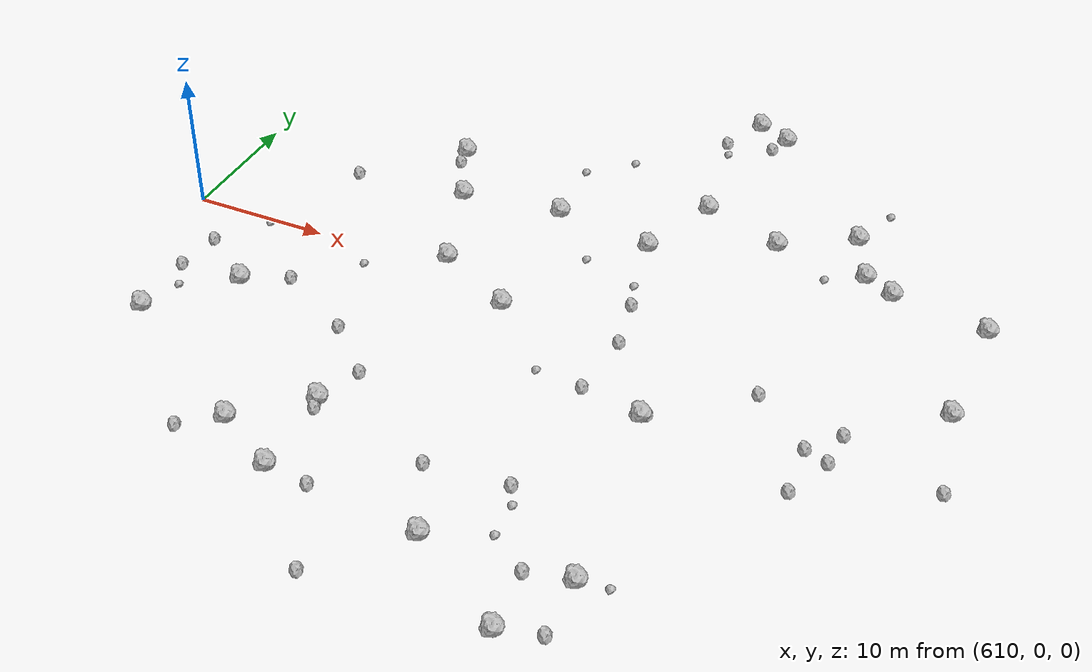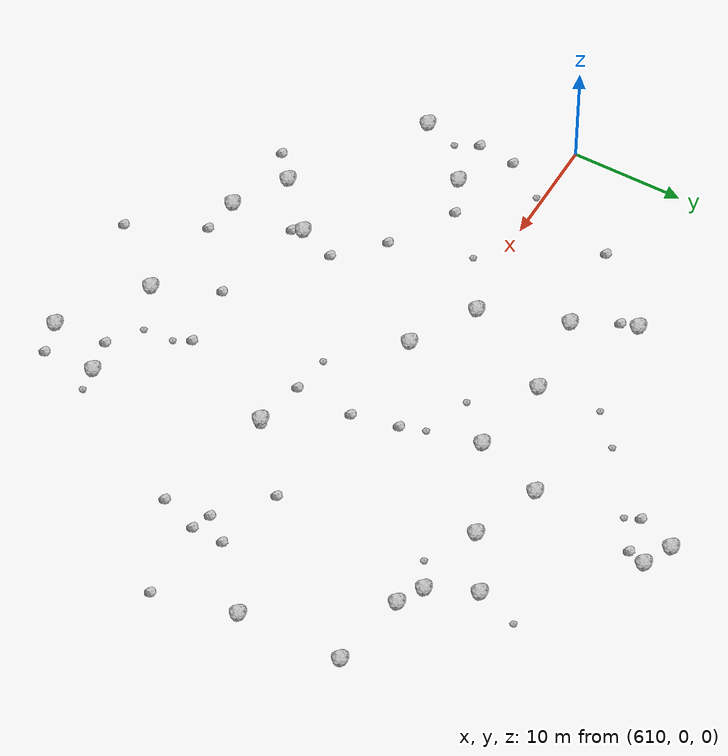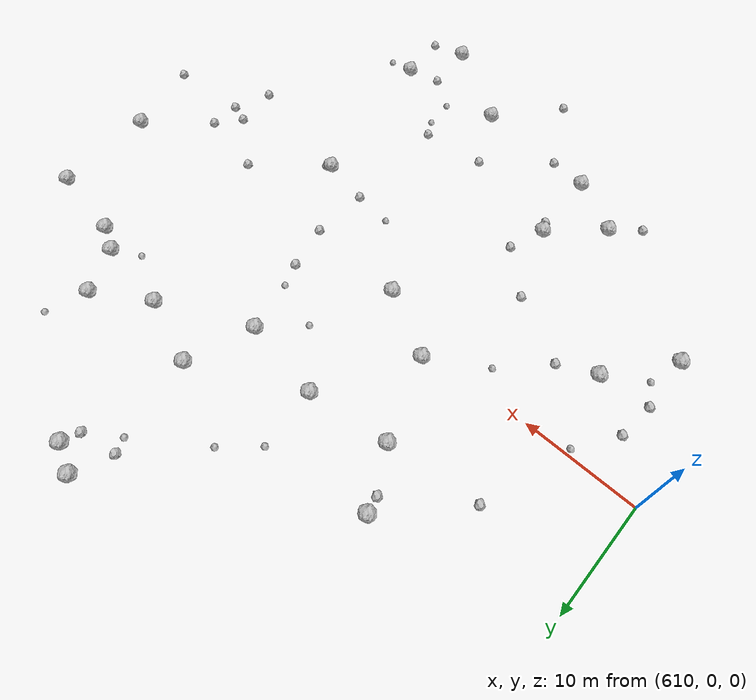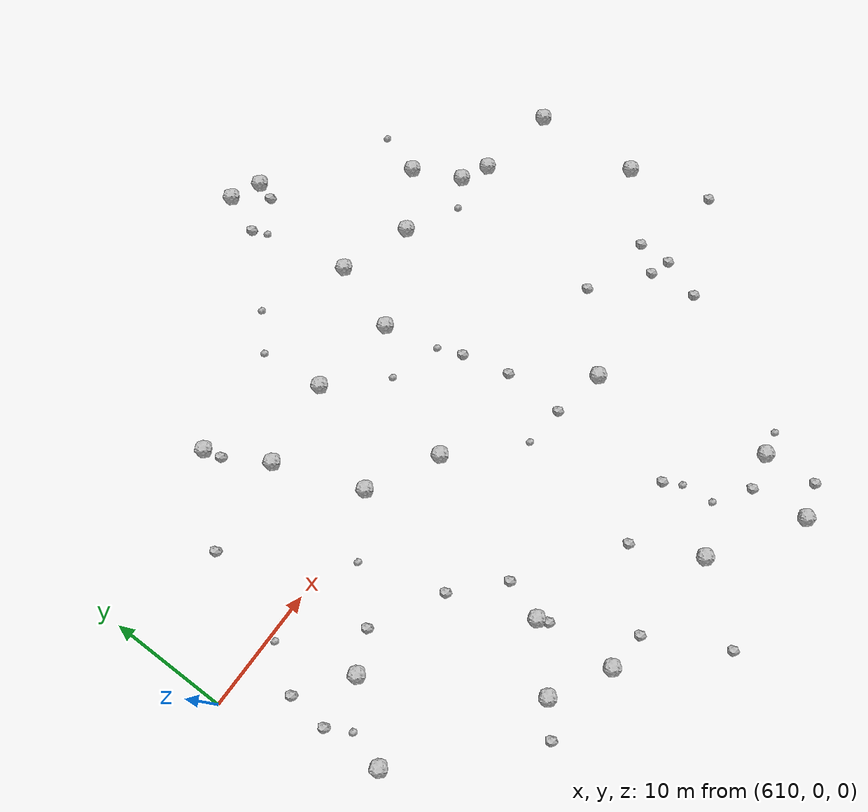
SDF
<sdf version="1.6">
 <world name="default">
  <include><uri>model://sun</uri></include>
  <model name="rock1_16_3">
   <include><uri>model://rock1</uri><pose>624.6951061247213 13.718830270747148 0.5 0 0 0</pose></include>
  </model>
  <model name="rock1_16_4">
   <include><uri>model://rock1</uri><pose>629.7476407820709 -22.551178552766835 0.5 0 0 0</pose></include>
  </model>
  <model name="rock1_16_5">
   <include><uri>model://rock1</uri><pose>650.1442416276761 12.368684869850952 0.5 0 0 0</pose></include>
  </model>
  <model name="rock1_16_6">
   <include><uri>model://rock1</uri><pose>648.4485884755566 -28.580011303647755 0.5 0 0 0</pose></include>
  </model>
  <model name="rock1_16_7">
   <include><uri>model://rock1</uri><pose>629.405649701284 -15.809857208687223 0.5 0 0 0</pose></include>
  </model>
  <model name="rock1_16_8">
   <include><uri>model://rock1</uri><pose>635.559800156534 -1.9968309473094017 0.5 0 0 0</pose></include>
  </model>
  <model name="rock1_16_9">
   <include><uri>model://rock1</uri><pose>629.7308527262928 1.1542935771434202 0.5 0 0 0</pose></include>
  </model>
  <model name="rock1_16_10">
   <include><uri>model://rock1</uri><pose>644.084568142683 14.481755276689462 0.5 0 0 0</pose></include>
  </model>
  <model name="rock1_16_11">
   <include><uri>model://rock1</uri><pose>643.6435707025435 26.593256433025033 0.5 0 0 0</pose></include>
  </model>
  <model name="rock1_16_12">
   <include><uri>model://rock1</uri><pose>641.0865334145966 -23.76369726354458 0.5 0 0 0</pose></include>
  </model>
  <model name="rock1_16_13">
   <include><uri>model://rock1</uri><pose>641.9102653263034 8.382591499464276 0.5 0 0 0</pose></include>
  </model>
  <model name="rock1_16_14">
   <include><uri>model://rock1</uri><pose>651.0698255677537 -23.256335119488604 0.5 0 0 0</pose></include>
  </model>
  <model name="rock1_16_15">
   <include><uri>model://rock1</uri><pose>613.5563316320186 -12.60975502994004 0.5 0 0 0</pose></include>
  </model>
  <model name="rock1_16_16">
   <include><uri>model://rock1</uri><pose>666.2423918418353 9.09763422158116 0.5 0 0 0</pose></include>
  </model>
  <model name="rock1_16_17">
   <include><uri>model://rock1</uri><pose>648.7075011325164 -8.565093412643364 0.5 0 0 0</pose></include>
  </model>
  <model name="rock1_16_18">
   <include><uri>model://rock1</uri><pose>617.9233006595375 -7.171319170004743 0.5 0 0 0</pose></include>
  </model>
  <model name="rock1_16_19">
   <include><uri>model://rock1</uri><pose>634.4971009699059 9.558275690767061 0.5 0 0 0</pose></include>
  </model>
  <model name="rock1_16_20">
   <include><uri>model://rock1</uri><pose>655.1542344380988 15.479477859653201 0.5 0 0 0</pose></include>
  </model>
  <model name="rock1_16_21">
   <include><uri>model://rock1</uri><pose>659.2587749243615 10.25777684119091 0.5 0 0 0</pose></include>
  </model>
  <model name="rock1_16_22">
   <include><uri>model://rock1</uri><pose>625.0552674548755 -19.844142554310437 0.5 0 0 0</pose></include>
  </model>
  <model name="rock1_16_23">
   <include><uri>model://rock1</uri><pose>666.4526756565729 -0.11632271990410104 0.5 0 0 0</pose></include>
  </model>
  <model name="rock1_16_24">
   <include><uri>model://rock1</uri><pose>646.1395426262486 25.44110477162151 0.5 0 0 0</pose></include>
  </model>
  <model name="rock1_16_25">
   <include><uri>model://rock1</uri><pose>657.0035825655029 11.42768645069269 0.5 0 0 0</pose></include>
  </model>
  <model name="rock1_16_26">
   <include><uri>model://rock1</uri><pose>627.1121932097811 8.585842584280435 0.5 0 0 0</pose></include>
  </model>
  <model name="rock2_16_0">
   <include><uri>model://rock2</uri><pose>645.5400127340915 23.862011153715045 0.3 0 0 0</pose></include>
  </model>
  <model name="rock2_16_1">
   <include><uri>model://rock2</uri><pose>644.4986333207172 -2.4318724437696275 0.3 0 0 0</pose></include>
  </model>
  <model name="rock2_16_2">
   <include><uri>model://rock2</uri><pose>622.6210322961388 -21.8376386345401 0.3 0 0 0</pose></include>
  </model>
  <model name="rock2_16_3">
   <include><uri>model://rock2</uri><pose>649.0063982299672 -8.28784612822911 0.3 0 0 0</pose></include>
  </model>
  <model name="rock2_16_4">
   <include><uri>model://rock2</uri><pose>621.122743320187 -5.652274748456609 0.3 0 0 0</pose></include>
  </model>
  <model name="rock2_16_5">
   <include><uri>model://rock2</uri><pose>647.9900614479455 -23.904176067503016 0.3 0 0 0</pose></include>
  </model>
  <model name="rock2_16_6">
   <include><uri>model://rock2</uri><pose>668.0025278486545 -7.253707055857991 0.3 0 0 0</pose></include>
  </model>
  <model name="rock2_16_7">
   <include><uri>model://rock2</uri><pose>636.2296106894617 -29.3513125669002 0.3 0 0 0</pose></include>
  </model>
  <model name="rock2_16_8">
   <include><uri>model://rock2</uri><pose>659.1118800174269 -7.06264561115815 0.3 0 0 0</pose></include>
  </model>
  <model name="rock2_16_9">
   <include><uri>model://rock2</uri><pose>644.2210767140687 -17.758965121661433 0.3 0 0 0</pose></include>
  </model>
  <model name="rock2_16_10">
   <include><uri>model://rock2</uri><pose>624.986824684728 12.237679764078912 0.3 0 0 0</pose></include>
  </model>
  <model name="rock2_16_11">
   <include><uri>model://rock2</uri><pose>651.3076791604764 -27.74165099373939 0.3 0 0 0</pose></include>
  </model>
  <model name="rock2_16_12">
   <include><uri>model://rock2</uri><pose>626.862913892782 -8.933451377989574 0.3 0 0 0</pose></include>
  </model>
  <model name="rock2_16_13">
   <include><uri>model://rock2</uri><pose>654.7191256647598 -3.42321582055758 0.3 0 0 0</pose></include>
  </model>
  <model name="rock2_16_14">
   <include><uri>model://rock2</uri><pose>613.3995317416908 -7.513742898957563 0.3 0 0 0</pose></include>
  </model>
  <model name="rock2_16_15">
   <include><uri>model://rock2</uri><pose>613.7814372230284 -4.072847608122846 0.3 0 0 0</pose></include>
  </model>
  <model name="rock2_16_16">
   <include><uri>model://rock2</uri><pose>633.0081245386891 -22.951229731343478 0.3 0 0 0</pose></include>
  </model>
  <model name="rock2_16_17">
   <include><uri>model://rock2</uri><pose>659.499022350534 -11.08723948351399 0.3 0 0 0</pose></include>
  </model>
  <model name="rock2_16_18">
   <include><uri>model://rock2</uri><pose>638.4459159594678 -18.3150931442243 0.3 0 0 0</pose></include>
  </model>
  <model name="rock2_16_19">
   <include><uri>model://rock2</uri><pose>642.1811885430378 23.1902174964449 0.3 0 0 0</pose></include>
  </model>
  <model name="rock2_16_20">
   <include><uri>model://rock2</uri><pose>660.8323842687212 -7.660613787271277 0.3 0 0 0</pose></include>
  </model>
  <model name="rock2_16_21">
   <include><uri>model://rock2</uri><pose>618.850682121562 7.635237406513809 0.3 0 0 0</pose></include>
  </model>
  <model name="rock2_16_22">
   <include><uri>model://rock2</uri><pose>660.8916435995126 -4.850140909491142 0.3 0 0 0</pose></include>
  </model>
  <model name="rock2_16_23">
   <include><uri>model://rock2</uri><pose>643.6268971527074 1.627253343911704 0.3 0 0 0</pose></include>
  </model>
  <model name="rock2_16_24">
   <include><uri>model://rock2</uri><pose>644.2159108166561 -7.6196874553200615 0.3 0 0 0</pose></include>
  </model>
  <model name="rock2_16_25">
   <include><uri>model://rock2</uri><pose>630.5361774123159 -12.454986229889162 0.3 0 0 0</pose></include>
  </model>
  <model name="rock2_16_26">
   <include><uri>model://rock2</uri><pose>629.7096144997689 -16.70875783582602 0.3 0 0 0</pose></include>
  </model>
  <model name="rock3_16_0">
   <include><uri>model://rock3</uri><pose>644.9702900115703 -19.243340667158595 0.2 0 0 0</pose></include>
  </model>
  <model name="rock3_16_1">
   <include><uri>model://rock3</uri><pose>656.3293191333789 19.187656429316256 0.2 0 0 0</pose></include>
  </model>
  <model name="rock3_16_2">
   <include><uri>model://rock3</uri><pose>642.8470878470823 3.698483315567607 0.2 0 0 0</pose></include>
  </model>
  <model name="rock3_16_3">
   <include><uri>model://rock3</uri><pose>653.084432154219 -22.971700808555973 0.2 0 0 0</pose></include>
  </model>
  <model name="rock3_16_4">
   <include><uri>model://rock3</uri><pose>640.7034063840716 -7.273254150020087 0.2 0 0 0</pose></include>
  </model>
  <model name="rock3_16_5">
   <include><uri>model://rock3</uri><pose>616.1591273355808 -0.531321106438142 0.2 0 0 0</pose></include>
  </model>
  <model name="rock3_16_6">
   <include><uri>model://rock3</uri><pose>636.854318049548 17.710512044610326 0.2 0 0 0</pose></include>
  </model>
  <model name="rock3_16_7">
   <include><uri>model://rock3</uri><pose>614.4026944120145 -9.510093009421261 0.2 0 0 0</pose></include>
  </model>
  <model name="rock3_16_8">
   <include><uri>model://rock3</uri><pose>645.1678456538732 -21.928770621130596 0.2 0 0 0</pose></include>
  </model>
  <model name="rock3_16_9">
   <include><uri>model://rock3</uri><pose>624.7271664945596 -1.9516847673761468 0.2 0 0 0</pose></include>
  </model>
  <model name="rock3_16_10">
   <include><uri>model://rock3</uri><pose>633.9879216726932 15.074154995560278 0.2 0 0 0</pose></include>
  </model>
  <model name="rock3_16_11">
   <include><uri>model://rock3</uri><pose>654.4344718367158 10.012030311372897 0.2 0 0 0</pose></include>
  </model>
  <model name="rock3_16_12">
   <include><uri>model://rock3</uri><pose>638.5921865228428 5.126168944678952 0.2 0 0 0</pose></include>
  </model>
  <model name="rock3_16_13">
   <include><uri>model://rock3</uri><pose>642.6998467410527 21.867793131811894 0.2 0 0 0</pose></include>
  </model>
 </world>
</sdf>
